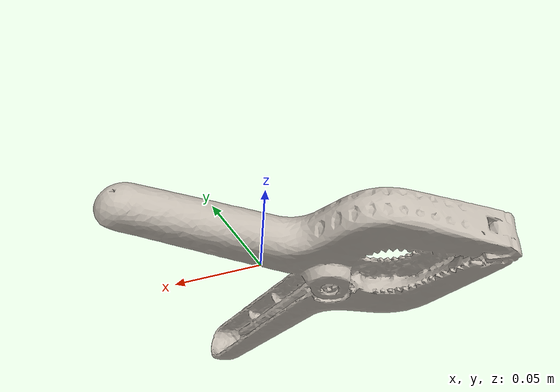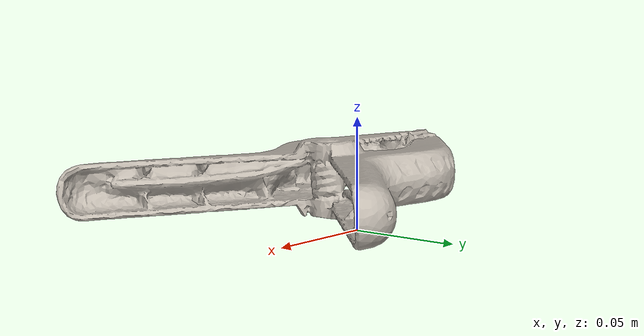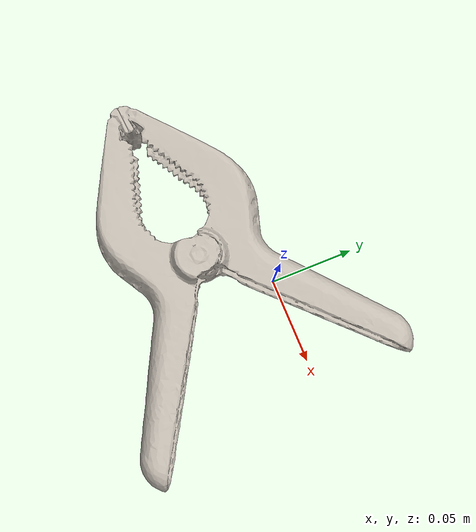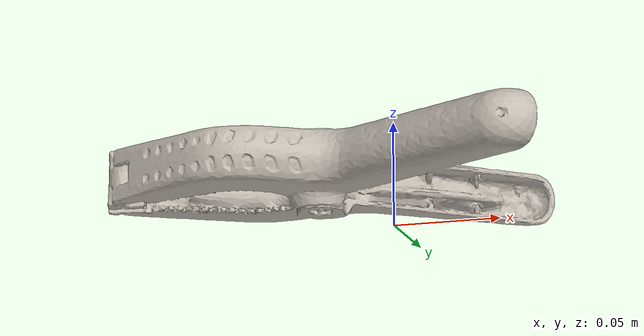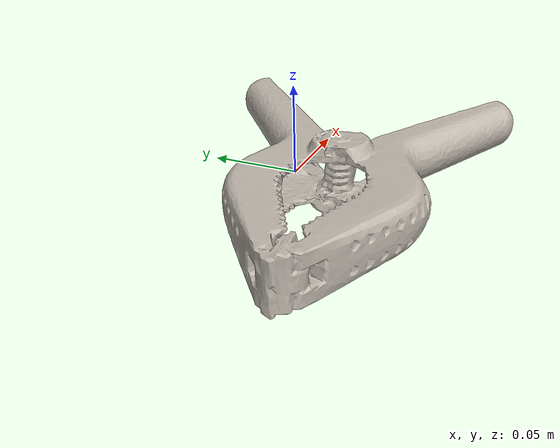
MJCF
<mujoco model="extra_large_clamp">
  <compiler angle="radian" meshdir="assets" texturedir="assets"/>
    <default>
        <default class="ycb_col">
            <geom contype="1" conaffinity="1" group="3" rgba=".4 .5 .6 1"/>
        </default>
        <default class="ycb_viz">
            <geom contype="0" conaffinity="0" type="mesh" mass="0"/>
        </default>
    </default>
  <asset>
    <texture type="2d" name="extra_large_clamp_tex" file="texture_map.png"/>
    <material name="extra_large_clamp_mat" texture="extra_large_clamp_tex" specular="0.5" shininess="0.5"/>
    <mesh file="textured.obj" name="extra_large_clamp"/>
    <mesh file="textured_collision_0.obj" name="extra_large_clamp_collision_0"/>
    <mesh file="textured_collision_1.obj" name="extra_large_clamp_collision_1"/>
    <mesh file="textured_collision_2.obj" name="extra_large_clamp_collision_2"/>
    <mesh file="textured_collision_3.obj" name="extra_large_clamp_collision_3"/>
    <mesh file="textured_collision_4.obj" name="extra_large_clamp_collision_4"/>
    <mesh file="textured_collision_5.obj" name="extra_large_clamp_collision_5"/>
    <mesh file="textured_collision_6.obj" name="extra_large_clamp_collision_6"/>
    <mesh file="textured_collision_7.obj" name="extra_large_clamp_collision_7"/>
    <mesh file="textured_collision_8.obj" name="extra_large_clamp_collision_8"/>
    <mesh file="textured_collision_9.obj" name="extra_large_clamp_collision_9"/>
    <mesh file="textured_collision_10.obj" name="extra_large_clamp_collision_10"/>
    <mesh file="textured_collision_11.obj" name="extra_large_clamp_collision_11"/>
    <mesh file="textured_collision_12.obj" name="extra_large_clamp_collision_12"/>
    <mesh file="textured_collision_13.obj" name="extra_large_clamp_collision_13"/>
    <mesh file="textured_collision_14.obj" name="extra_large_clamp_collision_14"/>
    <mesh file="textured_collision_15.obj" name="extra_large_clamp_collision_15"/>
    <mesh file="textured_collision_16.obj" name="extra_large_clamp_collision_16"/>
    <mesh file="textured_collision_17.obj" name="extra_large_clamp_collision_17"/>
    <mesh file="textured_collision_18.obj" name="extra_large_clamp_collision_18"/>
    <mesh file="textured_collision_19.obj" name="extra_large_clamp_collision_19"/>
    <mesh file="textured_collision_20.obj" name="extra_large_clamp_collision_20"/>
    <mesh file="textured_collision_21.obj" name="extra_large_clamp_collision_21"/>
    <mesh file="textured_collision_22.obj" name="extra_large_clamp_collision_22"/>
    <mesh file="textured_collision_23.obj" name="extra_large_clamp_collision_23"/>
    <mesh file="textured_collision_24.obj" name="extra_large_clamp_collision_24"/>
    <mesh file="textured_collision_25.obj" name="extra_large_clamp_collision_25"/>
    <mesh file="textured_collision_26.obj" name="extra_large_clamp_collision_26"/>
    <mesh file="textured_collision_27.obj" name="extra_large_clamp_collision_27"/>
    <mesh file="textured_collision_28.obj" name="extra_large_clamp_collision_28"/>
    <mesh file="textured_collision_29.obj" name="extra_large_clamp_collision_29"/>
    <mesh file="textured_collision_30.obj" name="extra_large_clamp_collision_30"/>
    <mesh file="textured_collision_31.obj" name="extra_large_clamp_collision_31"/>
    <mesh file="textured_collision_32.obj" name="extra_large_clamp_collision_32"/>
    <mesh file="textured_collision_33.obj" name="extra_large_clamp_collision_33"/>
    <mesh file="textured_collision_34.obj" name="extra_large_clamp_collision_34"/>
    <mesh file="textured_collision_35.obj" name="extra_large_clamp_collision_35"/>
    <mesh file="textured_collision_36.obj" name="extra_large_clamp_collision_36"/>
    <mesh file="textured_collision_37.obj" name="extra_large_clamp_collision_37"/>
    <mesh file="textured_collision_38.obj" name="extra_large_clamp_collision_38"/>
    <mesh file="textured_collision_39.obj" name="extra_large_clamp_collision_39"/>
    <mesh file="textured_collision_40.obj" name="extra_large_clamp_collision_40"/>
    <mesh file="textured_collision_41.obj" name="extra_large_clamp_collision_41"/>
    <mesh file="textured_collision_42.obj" name="extra_large_clamp_collision_42"/>
    <mesh file="textured_collision_43.obj" name="extra_large_clamp_collision_43"/>
    <mesh file="textured_collision_44.obj" name="extra_large_clamp_collision_44"/>
    <mesh file="textured_collision_45.obj" name="extra_large_clamp_collision_45"/>
    <mesh file="textured_collision_46.obj" name="extra_large_clamp_collision_46"/>
    <mesh file="textured_collision_47.obj" name="extra_large_clamp_collision_47"/>
    <mesh file="textured_collision_48.obj" name="extra_large_clamp_collision_48"/>
    <mesh file="textured_collision_49.obj" name="extra_large_clamp_collision_49"/>
    <mesh file="textured_collision_50.obj" name="extra_large_clamp_collision_50"/>
    <mesh file="textured_collision_51.obj" name="extra_large_clamp_collision_51"/>
    <mesh file="textured_collision_52.obj" name="extra_large_clamp_collision_52"/>
  </asset>
  <worldbody>
      <geom material="extra_large_clamp_mat" mesh="extra_large_clamp" class="ycb_viz"/>
      <geom mesh="extra_large_clamp_collision_0" class="ycb_col" conaffinity="1" condim="4" friction="0.1 0.1 0.1" mass="0.003516349811782946" rgba="1 1 1 1" solimp="0.99 0.99 0.01" solref=".001 0.1" type="mesh" group="3"/>
      <geom mesh="extra_large_clamp_collision_1" class="ycb_col" conaffinity="1" condim="4" friction="0.1 0.1 0.1" mass="0.005904905194512538" rgba="1 1 1 1" solimp="0.99 0.99 0.01" solref=".001 0.1" type="mesh" group="3"/>
      <geom mesh="extra_large_clamp_collision_2" class="ycb_col" conaffinity="1" condim="4" friction="0.1 0.1 0.1" mass="0.0026894398533994696" rgba="1 1 1 1" solimp="0.99 0.99 0.01" solref=".001 0.1" type="mesh" group="3"/>
      <geom mesh="extra_large_clamp_collision_3" class="ycb_col" conaffinity="1" condim="4" friction="0.1 0.1 0.1" mass="0.0014063526819383806" rgba="1 1 1 1" solimp="0.99 0.99 0.01" solref=".001 0.1" type="mesh" group="3"/>
      <geom mesh="extra_large_clamp_collision_4" class="ycb_col" conaffinity="1" condim="4" friction="0.1 0.1 0.1" mass="0.007034827332136887" rgba="1 1 1 1" solimp="0.99 0.99 0.01" solref=".001 0.1" type="mesh" group="3"/>
      <geom mesh="extra_large_clamp_collision_5" class="ycb_col" conaffinity="1" condim="4" friction="0.1 0.1 0.1" mass="0.0019482000289127756" rgba="1 1 1 1" solimp="0.99 0.99 0.01" solref=".001 0.1" type="mesh" group="3"/>
      <geom mesh="extra_large_clamp_collision_6" class="ycb_col" conaffinity="1" condim="4" friction="0.1 0.1 0.1" mass="0.008273561409256478" rgba="1 1 1 1" solimp="0.99 0.99 0.01" solref=".001 0.1" type="mesh" group="3"/>
      <geom mesh="extra_large_clamp_collision_7" class="ycb_col" conaffinity="1" condim="4" friction="0.1 0.1 0.1" mass="0.007000091801723214" rgba="1 1 1 1" solimp="0.99 0.99 0.01" solref=".001 0.1" type="mesh" group="3"/>
      <geom mesh="extra_large_clamp_collision_8" class="ycb_col" conaffinity="1" condim="4" friction="0.1 0.1 0.1" mass="0.0027142046479934788" rgba="1 1 1 1" solimp="0.99 0.99 0.01" solref=".001 0.1" type="mesh" group="3"/>
      <geom mesh="extra_large_clamp_collision_9" class="ycb_col" conaffinity="1" condim="4" friction="0.1 0.1 0.1" mass="0.00781270696614212" rgba="1 1 1 1" solimp="0.99 0.99 0.01" solref=".001 0.1" type="mesh" group="3"/>
      <geom mesh="extra_large_clamp_collision_10" class="ycb_col" conaffinity="1" condim="4" friction="0.1 0.1 0.1" mass="0.002031003460482261" rgba="1 1 1 1" solimp="0.99 0.99 0.01" solref=".001 0.1" type="mesh" group="3"/>
      <geom mesh="extra_large_clamp_collision_11" class="ycb_col" conaffinity="1" condim="4" friction="0.1 0.1 0.1" mass="0.007510630361760895" rgba="1 1 1 1" solimp="0.99 0.99 0.01" solref=".001 0.1" type="mesh" group="3"/>
      <geom mesh="extra_large_clamp_collision_12" class="ycb_col" conaffinity="1" condim="4" friction="0.1 0.1 0.1" mass="0.0030442165379191864" rgba="1 1 1 1" solimp="0.99 0.99 0.01" solref=".001 0.1" type="mesh" group="3"/>
      <geom mesh="extra_large_clamp_collision_13" class="ycb_col" conaffinity="1" condim="4" friction="0.1 0.1 0.1" mass="0.00852289436087513" rgba="1 1 1 1" solimp="0.99 0.99 0.01" solref=".001 0.1" type="mesh" group="3"/>
      <geom mesh="extra_large_clamp_collision_14" class="ycb_col" conaffinity="1" condim="4" friction="0.1 0.1 0.1" mass="0.002124256018937935" rgba="1 1 1 1" solimp="0.99 0.99 0.01" solref=".001 0.1" type="mesh" group="3"/>
      <geom mesh="extra_large_clamp_collision_15" class="ycb_col" conaffinity="1" condim="4" friction="0.1 0.1 0.1" mass="0.0019208040914635161" rgba="1 1 1 1" solimp="0.99 0.99 0.01" solref=".001 0.1" type="mesh" group="3"/>
      <geom mesh="extra_large_clamp_collision_16" class="ycb_col" conaffinity="1" condim="4" friction="0.1 0.1 0.1" mass="0.005336703923868819" rgba="1 1 1 1" solimp="0.99 0.99 0.01" solref=".001 0.1" type="mesh" group="3"/>
      <geom mesh="extra_large_clamp_collision_17" class="ycb_col" conaffinity="1" condim="4" friction="0.1 0.1 0.1" mass="0.007810124702048539" rgba="1 1 1 1" solimp="0.99 0.99 0.01" solref=".001 0.1" type="mesh" group="3"/>
      <geom mesh="extra_large_clamp_collision_18" class="ycb_col" conaffinity="1" condim="4" friction="0.1 0.1 0.1" mass="0.0015747272835408743" rgba="1 1 1 1" solimp="0.99 0.99 0.01" solref=".001 0.1" type="mesh" group="3"/>
      <geom mesh="extra_large_clamp_collision_19" class="ycb_col" conaffinity="1" condim="4" friction="0.1 0.1 0.1" mass="0.0010508273200792073" rgba="1 1 1 1" solimp="0.99 0.99 0.01" solref=".001 0.1" type="mesh" group="3"/>
      <geom mesh="extra_large_clamp_collision_20" class="ycb_col" conaffinity="1" condim="4" friction="0.1 0.1 0.1" mass="0.004710308614966326" rgba="1 1 1 1" solimp="0.99 0.99 0.01" solref=".001 0.1" type="mesh" group="3"/>
      <geom mesh="extra_large_clamp_collision_21" class="ycb_col" conaffinity="1" condim="4" friction="0.1 0.1 0.1" mass="0.0011993778699879993" rgba="1 1 1 1" solimp="0.99 0.99 0.01" solref=".001 0.1" type="mesh" group="3"/>
      <geom mesh="extra_large_clamp_collision_22" class="ycb_col" conaffinity="1" condim="4" friction="0.1 0.1 0.1" mass="0.002428170280303058" rgba="1 1 1 1" solimp="0.99 0.99 0.01" solref=".001 0.1" type="mesh" group="3"/>
      <geom mesh="extra_large_clamp_collision_23" class="ycb_col" conaffinity="1" condim="4" friction="0.1 0.1 0.1" mass="0.0020601636075011157" rgba="1 1 1 1" solimp="0.99 0.99 0.01" solref=".001 0.1" type="mesh" group="3"/>
      <geom mesh="extra_large_clamp_collision_24" class="ycb_col" conaffinity="1" condim="4" friction="0.1 0.1 0.1" mass="0.003965613429725675" rgba="1 1 1 1" solimp="0.99 0.99 0.01" solref=".001 0.1" type="mesh" group="3"/>
      <geom mesh="extra_large_clamp_collision_25" class="ycb_col" conaffinity="1" condim="4" friction="0.1 0.1 0.1" mass="0.002032549090095056" rgba="1 1 1 1" solimp="0.99 0.99 0.01" solref=".001 0.1" type="mesh" group="3"/>
      <geom mesh="extra_large_clamp_collision_26" class="ycb_col" conaffinity="1" condim="4" friction="0.1 0.1 0.1" mass="0.005063890649948969" rgba="1 1 1 1" solimp="0.99 0.99 0.01" solref=".001 0.1" type="mesh" group="3"/>
      <geom mesh="extra_large_clamp_collision_27" class="ycb_col" conaffinity="1" condim="4" friction="0.1 0.1 0.1" mass="0.003054865638935602" rgba="1 1 1 1" solimp="0.99 0.99 0.01" solref=".001 0.1" type="mesh" group="3"/>
      <geom mesh="extra_large_clamp_collision_28" class="ycb_col" conaffinity="1" condim="4" friction="0.1 0.1 0.1" mass="0.0104239455192564" rgba="1 1 1 1" solimp="0.99 0.99 0.01" solref=".001 0.1" type="mesh" group="3"/>
      <geom mesh="extra_large_clamp_collision_29" class="ycb_col" conaffinity="1" condim="4" friction="0.1 0.1 0.1" mass="0.006687406775804465" rgba="1 1 1 1" solimp="0.99 0.99 0.01" solref=".001 0.1" type="mesh" group="3"/>
      <geom mesh="extra_large_clamp_collision_30" class="ycb_col" conaffinity="1" condim="4" friction="0.1 0.1 0.1" mass="0.002168028971636136" rgba="1 1 1 1" solimp="0.99 0.99 0.01" solref=".001 0.1" type="mesh" group="3"/>
      <geom mesh="extra_large_clamp_collision_31" class="ycb_col" conaffinity="1" condim="4" friction="0.1 0.1 0.1" mass="0.0012385167093539675" rgba="1 1 1 1" solimp="0.99 0.99 0.01" solref=".001 0.1" type="mesh" group="3"/>
      <geom mesh="extra_large_clamp_collision_32" class="ycb_col" conaffinity="1" condim="4" friction="0.1 0.1 0.1" mass="0.007259023629753292" rgba="1 1 1 1" solimp="0.99 0.99 0.01" solref=".001 0.1" type="mesh" group="3"/>
      <geom mesh="extra_large_clamp_collision_33" class="ycb_col" conaffinity="1" condim="4" friction="0.1 0.1 0.1" mass="0.0005771820585964423" rgba="1 1 1 1" solimp="0.99 0.99 0.01" solref=".001 0.1" type="mesh" group="3"/>
      <geom mesh="extra_large_clamp_collision_34" class="ycb_col" conaffinity="1" condim="4" friction="0.1 0.1 0.1" mass="0.0006814431181838584" rgba="1 1 1 1" solimp="0.99 0.99 0.01" solref=".001 0.1" type="mesh" group="3"/>
      <geom mesh="extra_large_clamp_collision_35" class="ycb_col" conaffinity="1" condim="4" friction="0.1 0.1 0.1" mass="0.001438864814778661" rgba="1 1 1 1" solimp="0.99 0.99 0.01" solref=".001 0.1" type="mesh" group="3"/>
      <geom mesh="extra_large_clamp_collision_36" class="ycb_col" conaffinity="1" condim="4" friction="0.1 0.1 0.1" mass="0.0014988939541633202" rgba="1 1 1 1" solimp="0.99 0.99 0.01" solref=".001 0.1" type="mesh" group="3"/>
      <geom mesh="extra_large_clamp_collision_37" class="ycb_col" conaffinity="1" condim="4" friction="0.1 0.1 0.1" mass="0.0019789698050492383" rgba="1 1 1 1" solimp="0.99 0.99 0.01" solref=".001 0.1" type="mesh" group="3"/>
      <geom mesh="extra_large_clamp_collision_38" class="ycb_col" conaffinity="1" condim="4" friction="0.1 0.1 0.1" mass="0.0052556532514838735" rgba="1 1 1 1" solimp="0.99 0.99 0.01" solref=".001 0.1" type="mesh" group="3"/>
      <geom mesh="extra_large_clamp_collision_39" class="ycb_col" conaffinity="1" condim="4" friction="0.1 0.1 0.1" mass="0.006301386517411707" rgba="1 1 1 1" solimp="0.99 0.99 0.01" solref=".001 0.1" type="mesh" group="3"/>
      <geom mesh="extra_large_clamp_collision_40" class="ycb_col" conaffinity="1" condim="4" friction="0.1 0.1 0.1" mass="0.0055827846603324046" rgba="1 1 1 1" solimp="0.99 0.99 0.01" solref=".001 0.1" type="mesh" group="3"/>
      <geom mesh="extra_large_clamp_collision_41" class="ycb_col" conaffinity="1" condim="4" friction="0.1 0.1 0.1" mass="0.006438220928029956" rgba="1 1 1 1" solimp="0.99 0.99 0.01" solref=".001 0.1" type="mesh" group="3"/>
      <geom mesh="extra_large_clamp_collision_42" class="ycb_col" conaffinity="1" condim="4" friction="0.1 0.1 0.1" mass="0.0006519981842113369" rgba="1 1 1 1" solimp="0.99 0.99 0.01" solref=".001 0.1" type="mesh" group="3"/>
      <geom mesh="extra_large_clamp_collision_43" class="ycb_col" conaffinity="1" condim="4" friction="0.1 0.1 0.1" mass="0.0022524675367904504" rgba="1 1 1 1" solimp="0.99 0.99 0.01" solref=".001 0.1" type="mesh" group="3"/>
      <geom mesh="extra_large_clamp_collision_44" class="ycb_col" conaffinity="1" condim="4" friction="0.1 0.1 0.1" mass="0.0013919945474785188" rgba="1 1 1 1" solimp="0.99 0.99 0.01" solref=".001 0.1" type="mesh" group="3"/>
      <geom mesh="extra_large_clamp_collision_45" class="ycb_col" conaffinity="1" condim="4" friction="0.1 0.1 0.1" mass="0.0010448154784430564" rgba="1 1 1 1" solimp="0.99 0.99 0.01" solref=".001 0.1" type="mesh" group="3"/>
      <geom mesh="extra_large_clamp_collision_46" class="ycb_col" conaffinity="1" condim="4" friction="0.1 0.1 0.1" mass="0.0031066622370948442" rgba="1 1 1 1" solimp="0.99 0.99 0.01" solref=".001 0.1" type="mesh" group="3"/>
      <geom mesh="extra_large_clamp_collision_47" class="ycb_col" conaffinity="1" condim="4" friction="0.1 0.1 0.1" mass="0.002607639744025191" rgba="1 1 1 1" solimp="0.99 0.99 0.01" solref=".001 0.1" type="mesh" group="3"/>
      <geom mesh="extra_large_clamp_collision_48" class="ycb_col" conaffinity="1" condim="4" friction="0.1 0.1 0.1" mass="0.004952848818483678" rgba="1 1 1 1" solimp="0.99 0.99 0.01" solref=".001 0.1" type="mesh" group="3"/>
      <geom mesh="extra_large_clamp_collision_49" class="ycb_col" conaffinity="1" condim="4" friction="0.1 0.1 0.1" mass="0.0034660724892802454" rgba="1 1 1 1" solimp="0.99 0.99 0.01" solref=".001 0.1" type="mesh" group="3"/>
      <geom mesh="extra_large_clamp_collision_50" class="ycb_col" conaffinity="1" condim="4" friction="0.1 0.1 0.1" mass="0.0052740647541123465" rgba="1 1 1 1" solimp="0.99 0.99 0.01" solref=".001 0.1" type="mesh" group="3"/>
      <geom mesh="extra_large_clamp_collision_51" class="ycb_col" conaffinity="1" condim="4" friction="0.1 0.1 0.1" mass="0.00459482841083255" rgba="1 1 1 1" solimp="0.99 0.99 0.01" solref=".001 0.1" type="mesh" group="3"/>
      <geom mesh="extra_large_clamp_collision_52" class="ycb_col" conaffinity="1" condim="4" friction="0.1 0.1 0.1" mass="0.0013845201151756195" rgba="1 1 1 1" solimp="0.99 0.99 0.01" solref=".001 0.1" type="mesh" group="3"/>
  </worldbody>
</mujoco>
